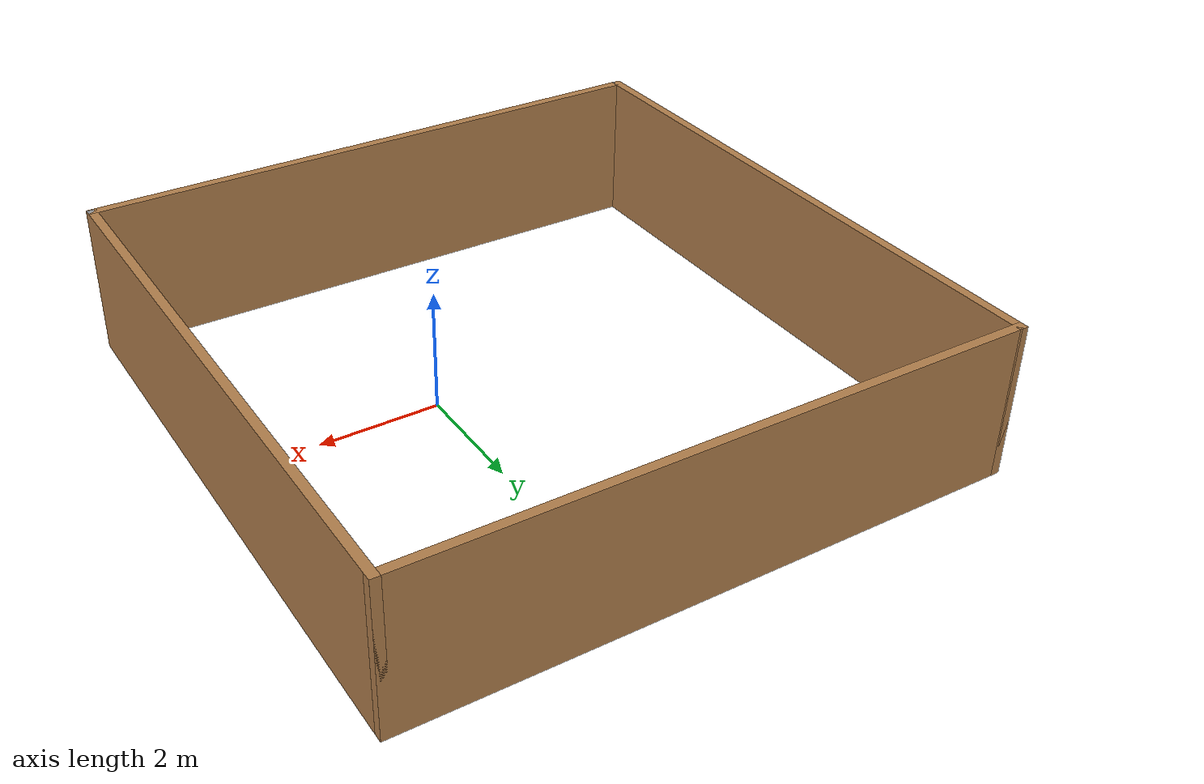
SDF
<?xml version='1.0'?>
<sdf version='1.7'>
  <model name='square_maze'>
    <pose>-1.185 0.695 0 0 -0 0</pose>
    <link name='Wall_1'>
      <collision name='Wall_1_Collision'>
        <geometry>
          <box>
            <size>10 0.15 2.5</size>
          </box>
        </geometry>
        <pose>0 0 1.25 0 -0 0</pose>
      </collision>
      <visual name='Wall_1_Visual'>
        <pose>0 0 1.25 0 -0 0</pose>
        <geometry>
          <box>
            <size>10 0.15 2.5</size>
          </box>
        </geometry>
        <material>
          <script>
            <uri>file://media/materials/scripts/gazebo.material</uri>
            <name>Gazebo/Wood</name>
          </script>
          <ambient>1 1 1 1</ambient>
        </material>
        <meta>
          <layer>0</layer>
        </meta>
      </visual>
      <pose>0 4.925 0 0 -0 0</pose>
    </link>
    <link name='Wall_12'>
      <collision name='Wall_12_Collision'>
        <geometry>
          <box>
            <size>10 0.15 2.5</size>
          </box>
        </geometry>
        <pose>0 0 1.25 0 -0 0</pose>
      </collision>
      <visual name='Wall_12_Visual'>
        <pose>0 0 1.25 0 -0 0</pose>
        <geometry>
          <box>
            <size>10 0.15 2.5</size>
          </box>
        </geometry>
        <material>
          <script>
            <uri>file://media/materials/scripts/gazebo.material</uri>
            <name>Gazebo/Wood</name>
          </script>
          <ambient>1 1 1 1</ambient>
        </material>
        <meta>
          <layer>0</layer>
        </meta>
      </visual>
      <pose>4.925 -0 0 0 -0 1.5708</pose>
    </link>
    <link name='Wall_5'>
      <collision name='Wall_5_Collision'>
        <geometry>
          <box>
            <size>10 0.15 2.5</size>
          </box>
        </geometry>
        <pose>0 0 1.25 0 -0 0</pose>
      </collision>
      <visual name='Wall_5_Visual'>
        <pose>0 0 1.25 0 -0 0</pose>
        <geometry>
          <box>
            <size>10 0.15 2.5</size>
          </box>
        </geometry>
        <material>
          <script>
            <uri>file://media/materials/scripts/gazebo.material</uri>
            <name>Gazebo/Wood</name>
          </script>
          <ambient>1 1 1 1</ambient>
        </material>
        <meta>
          <layer>0</layer>
        </meta>
      </visual>
      <pose>-4.925 -0 0 0 -0 -1.5708</pose>
    </link>
    <link name='Wall_6'>
      <collision name='Wall_6_Collision'>
        <geometry>
          <box>
            <size>0.15 0.15 2.5</size>
          </box>
        </geometry>
        <pose>0 0 1.25 0 -0 0</pose>
      </collision>
      <visual name='Wall_6_Visual'>
        <pose>0 0 1.25 0 -0 0</pose>
        <geometry>
          <box>
            <size>0.15 0.15 2.5</size>
          </box>
        </geometry>
        <material>
          <script>
            <uri>file://media/materials/scripts/gazebo.material</uri>
            <name>Gazebo/Grey</name>
          </script>
          <ambient>1 1 1 1</ambient>
        </material>
        <meta>
          <layer>0</layer>
        </meta>
      </visual>
      <pose>-4.925 -4.925 0 0 -0 0</pose>
    </link>
    <link name='Wall_8'>
      <collision name='Wall_8_Collision'>
        <geometry>
          <box>
            <size>10 0.15 2.5</size>
          </box>
        </geometry>
        <pose>0 0 1.25 0 -0 0</pose>
      </collision>
      <visual name='Wall_8_Visual'>
        <pose>0 0 1.25 0 -0 0</pose>
        <geometry>
          <box>
            <size>10 0.15 2.5</size>
          </box>
        </geometry>
        <material>
          <script>
            <uri>file://media/materials/scripts/gazebo.material</uri>
            <name>Gazebo/Wood</name>
          </script>
          <ambient>1 1 1 1</ambient>
        </material>
        <meta>
          <layer>0</layer>
        </meta>
      </visual>
      <pose>0 -4.925 0 0 -0 0</pose>
    </link>
    <link name='Wall_9'>
      <collision name='Wall_9_Collision'>
        <geometry>
          <box>
            <size>0.15 0.15 2.5</size>
          </box>
        </geometry>
        <pose>0 0 1.25 0 -0 0</pose>
      </collision>
      <visual name='Wall_9_Visual'>
        <pose>0 0 1.25 0 -0 0</pose>
        <geometry>
          <box>
            <size>0.15 0.15 2.5</size>
          </box>
        </geometry>
        <material>
          <script>
            <uri>file://media/materials/scripts/gazebo.material</uri>
            <name>Gazebo/Grey</name>
          </script>
          <ambient>1 1 1 1</ambient>
        </material>
        <meta>
          <layer>0</layer>
        </meta>
      </visual>
      <pose>4.925 -4.925 0 0 -0 0</pose>
    </link>
    <static>1</static>
  </model>
</sdf>
